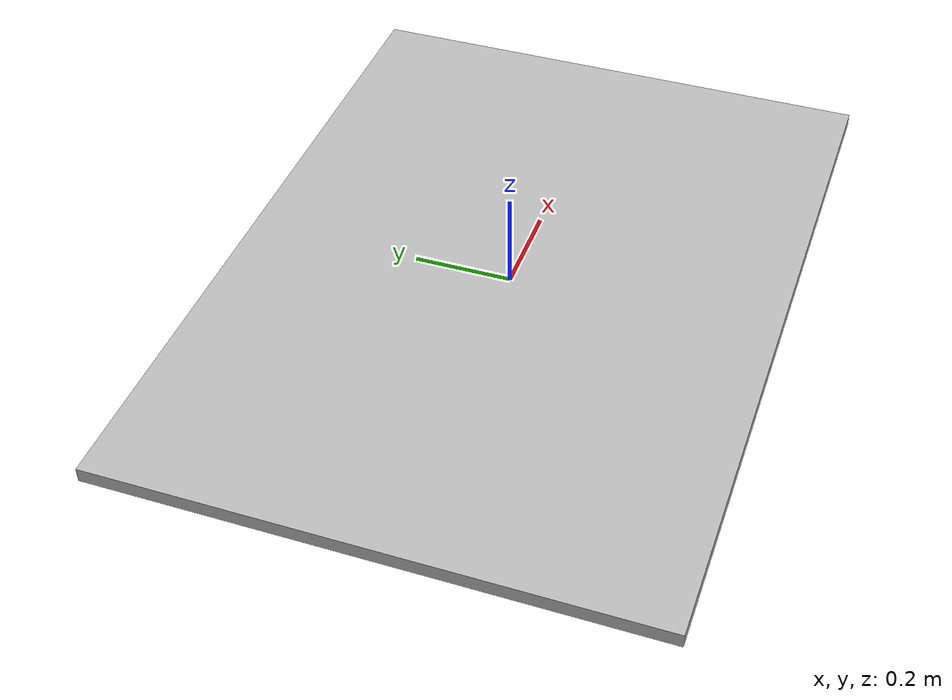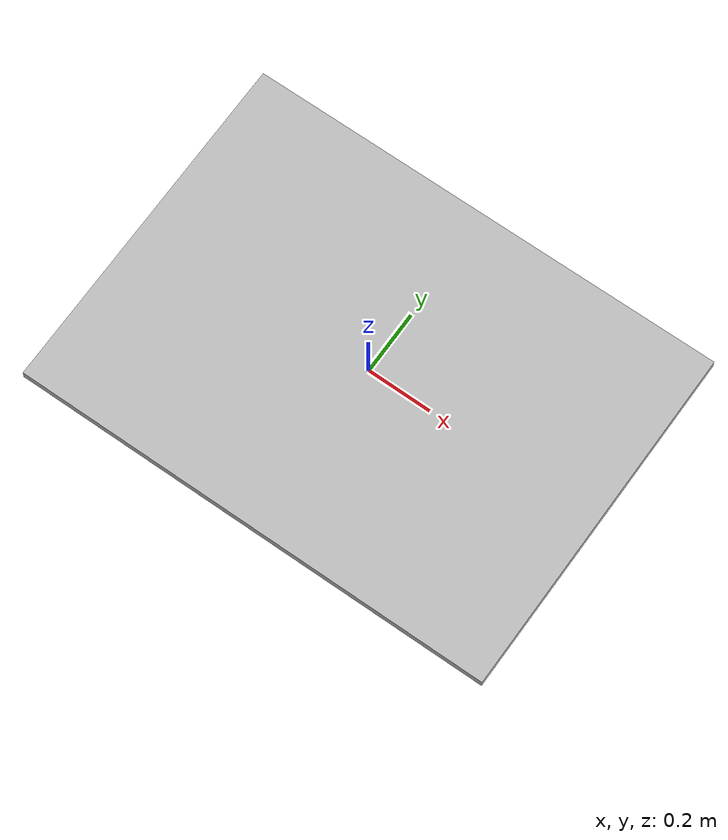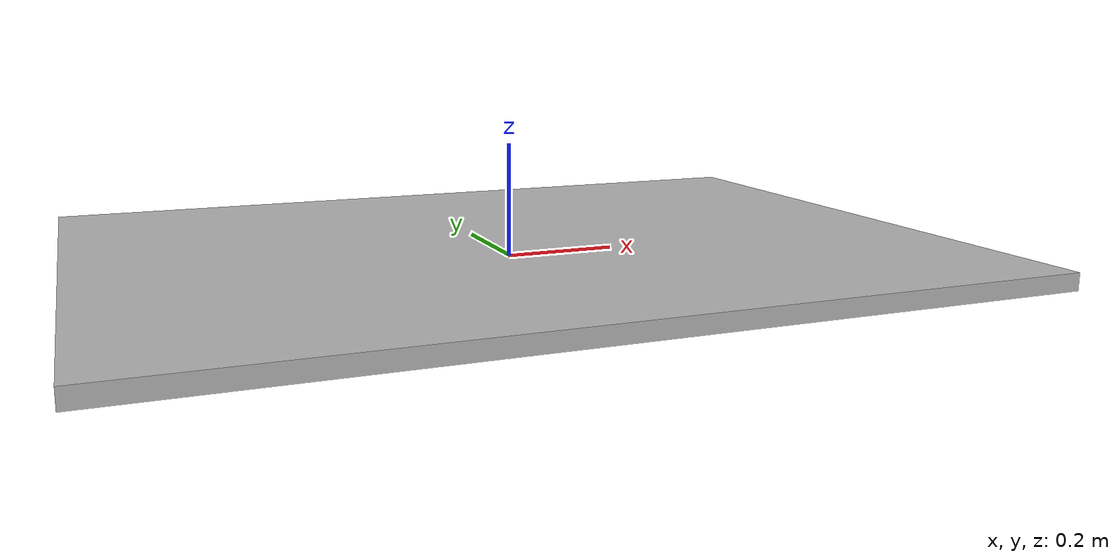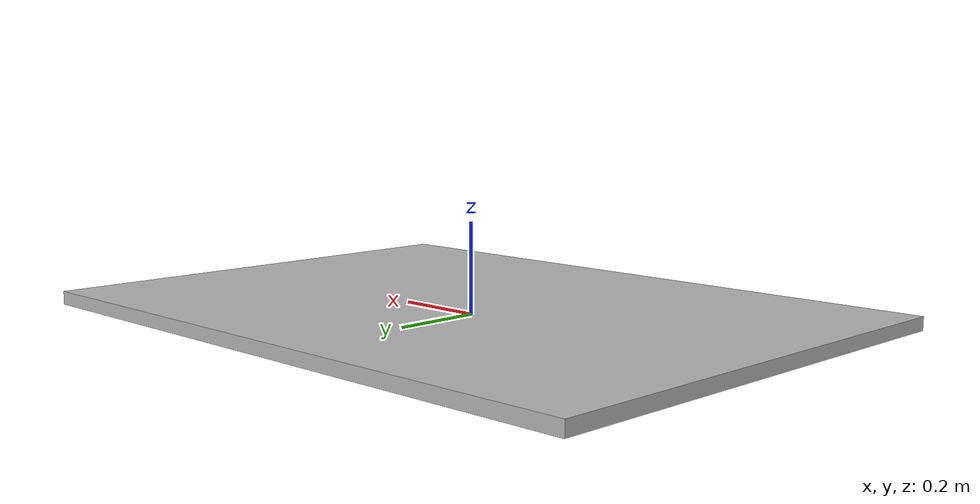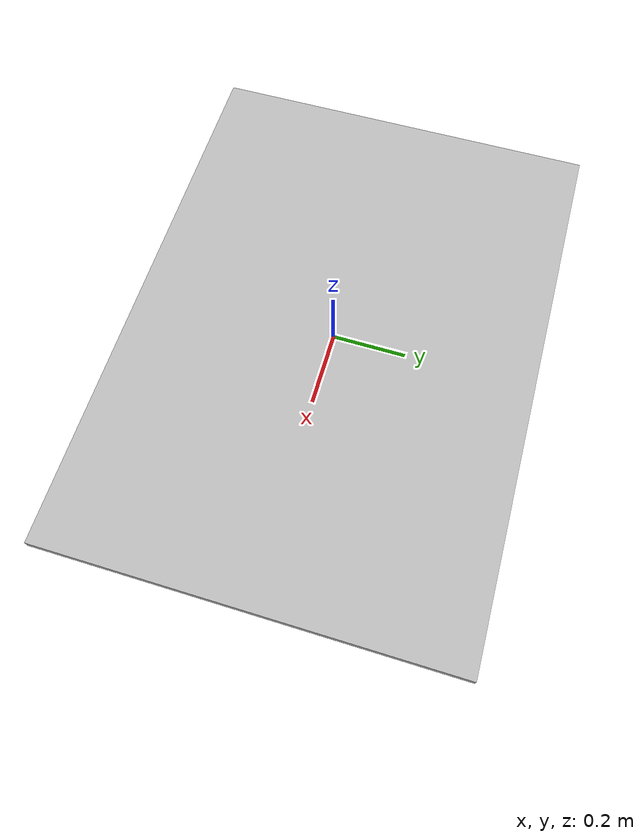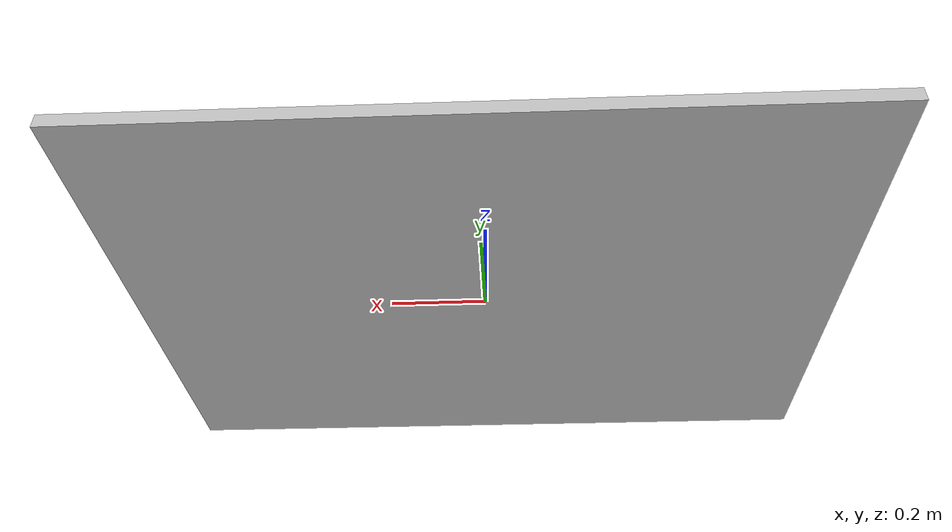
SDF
<?xml version="1.0" ?>
<sdf version="1.5">
  <model name="concrete_ground2">
    <static>true</static>
    <link name="link">
      <pose>0 0 0.01 0 0 0</pose>
      <collision name="collision">
        <geometry>
          <box>
            <size>1.5 1.1 0.03</size>
          </box>
        </geometry>
      </collision>
      <visual name="visual">
        <cast_shadows>false</cast_shadows>
        <geometry>
          <box>
            <size>1.5 1.1 0.03</size>
          </box>
        </geometry>
        <material>
          <script>
            <uri>model://concrete_ground2/materials/scripts</uri>
            <uri>model://concrete_ground2/materials/textures</uri>
            <name>vrc/concrete_ground2</name>
          </script>
        </material>
      </visual>
    </link>
  </model>
</sdf>
